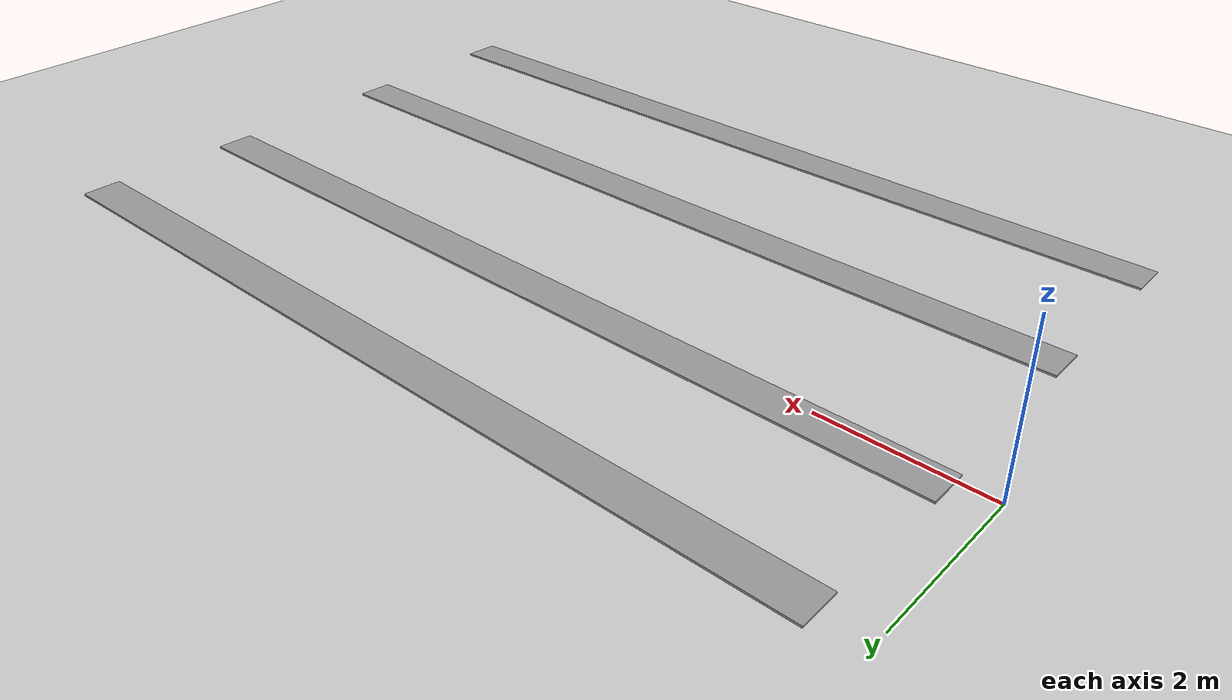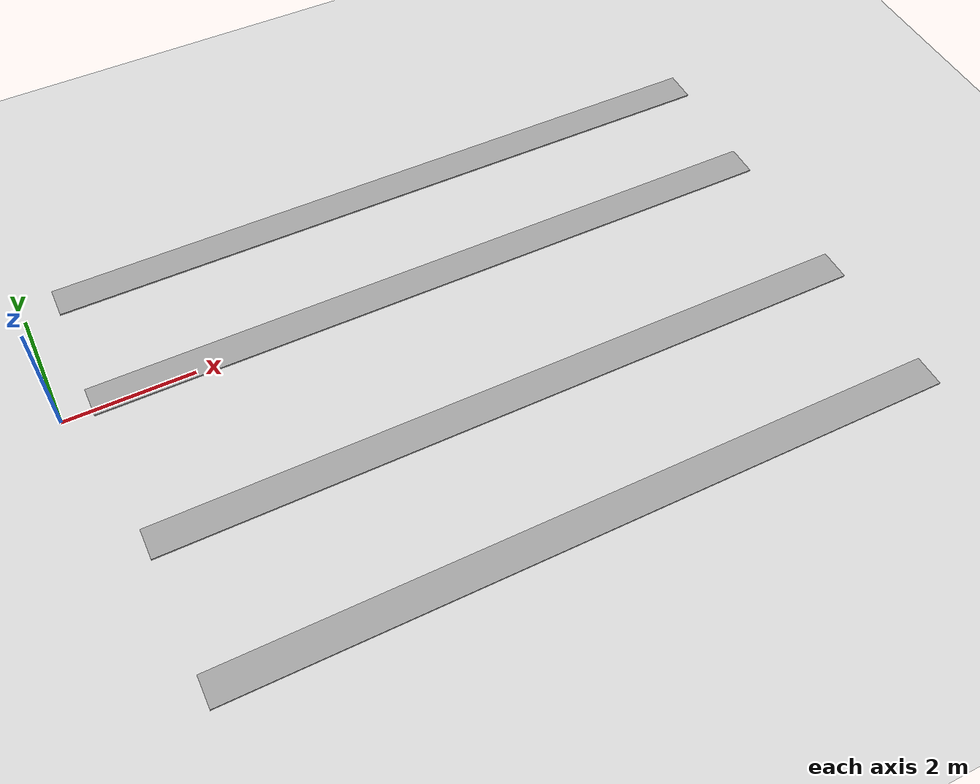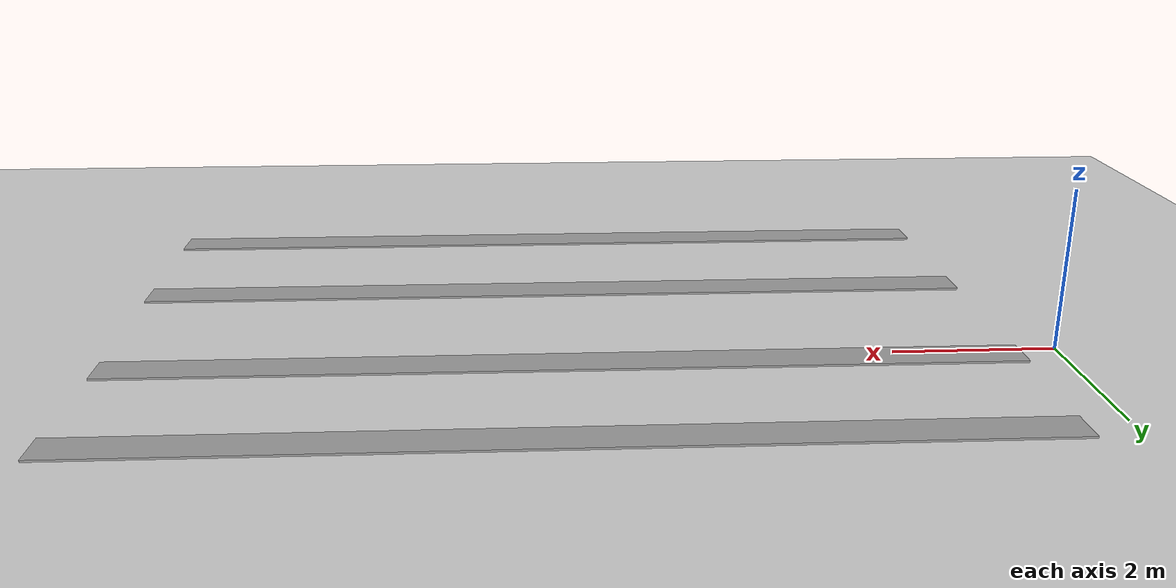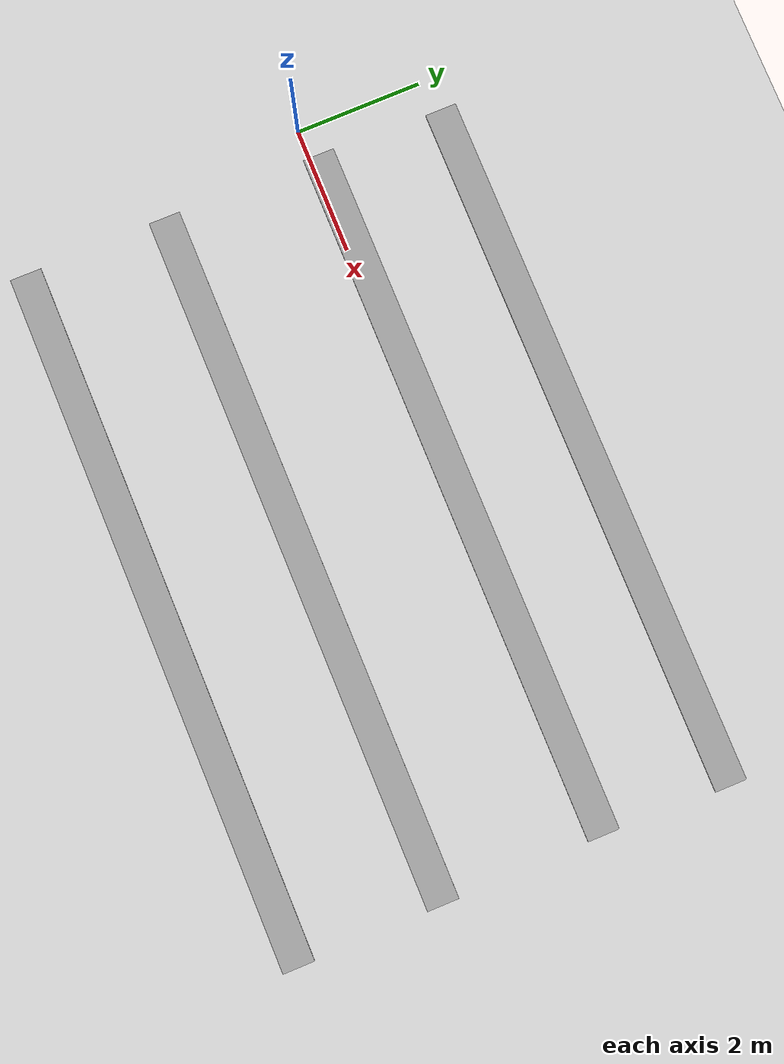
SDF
<sdf version="1.6">
 <world name="default">
  <light name="sun" type="directional">
   <pose>0 0 10 0 -0 0</pose>
   <diffuse>0.8 0.8 0.8 1</diffuse>
   <specular>0.2 0.2 0.2 1</specular>
   <attenuation>
    <range>1000</range>
    <constant>0.9</constant>
    <linear>0.01</linear>
    <quadratic>0.001</quadratic>
   </attenuation>
   <direction>-0.5 0.1 -0.9</direction>
  </light>
  <model name="ground_plane">
   <static>1</static>
   <link name="link">
    <collision name="collision">
     <geometry><plane><normal>0 0 1</normal><size>100 100</size></plane></geometry>
     <surface><friction><ode><mu>100</mu><mu2>50</mu2></ode></friction></surface>
    </collision>
    <visual name="visual">
     <cast_shadows>0</cast_shadows>
     <geometry><plane><normal>0 0 1</normal><size>100 100</size></plane></geometry>
     <material>
      <script><uri>file://media/materials/scripts/gazebo.material</uri><name>Gazebo/Grey</name></script>
     </material>
    </visual>
   </link>
  </model>
  <gravity>0 0 -9.8</gravity>
  <magnetic_field>6e-06 2.3e-05 -4.2e-05</magnetic_field>
  <atmosphere type="adiabatic"/>
  <physics name="default_physics" default="0" type="ode">
   <max_step_size>0.001</max_step_size>
   <real_time_factor>1</real_time_factor>
   <real_time_update_rate>1000</real_time_update_rate>
  </physics>
  <scene><ambient>0.4 0.4 0.4 1</ambient><background>0.7 0.7 0.7 1</background><shadows>1</shadows></scene>
  <spherical_coordinates>
   <surface_model>EARTH_WGS84</surface_model>
   <latitude_deg>0</latitude_deg>
   <longitude_deg>0</longitude_deg>
   <elevation>0</elevation>
   <heading_deg>0</heading_deg>
  </spherical_coordinates>
  <model name="unit_box_0_0">
   <link name="link">
    <pose>4.03611 1.74012 -0 0 -0 0</pose>
    <inertial>
     <mass>0.137918</mass>
     <inertia>
      <ixx>0.00283246</ixx>
      <ixy>0</ixy>
      <ixz>0</ixz>
      <iyy>1.39815</iyy>
      <iyz>0</iyz>
      <izz>1.40096</izz>
     </inertia>
    </inertial>
    <visual name="visual">
     <geometry><box><size>11.0295 0.495787 0.025162</size></box></geometry>
     <material>
      <script><name>Gazebo/Grey</name><uri>file://media/materials/scripts/gazebo.material</uri></script>
      <ambient>1 1 1 1</ambient>
      <diffuse>1 1 1 1</diffuse>
      <specular>1 1 1 1</specular>
      <emissive>1 1 1 1</emissive>
      <shader type="vertex"><normal_map>__default__</normal_map></shader>
     </material>
    </visual>
    <collision name="collision">
     <geometry><box><size>11.0295 0.495787 0.025162</size></box></geometry>
     <surface>
      <friction>
       <ode><mu>1</mu><mu2>1</mu2><fdir1>0 0 0</fdir1><slip1>0</slip1><slip2>0</slip2></ode>
       <torsional>
        <coefficient>1</coefficient>
        <patch_radius>0</patch_radius>
        <surface_radius>0</surface_radius>
        <use_patch_radius>1</use_patch_radius>
        <ode><slip>0</slip></ode>
       </torsional>
      </friction>
      <bounce><restitution_coefficient>0</restitution_coefficient><threshold>1e+06</threshold></bounce>
      <contact>
       <collide_without_contact>0</collide_without_contact>
       <collide_without_contact_bitmask>1</collide_without_contact_bitmask>
       <collide_bitmask>1</collide_bitmask>
       <ode>
        <soft_cfm>0</soft_cfm>
        <soft_erp>0.2</soft_erp>
        <kp>1e+13</kp>
        <kd>1</kd>
        <max_vel>0.01</max_vel>
        <min_depth>0</min_depth>
       </ode>
       <bullet>
        <split_impulse>1</split_impulse>
        <split_impulse_penetration_threshold>-0.01</split_impulse_penetration_threshold>
        <soft_cfm>0</soft_cfm>
        <soft_erp>0.2</soft_erp>
        <kp>1e+13</kp>
        <kd>1</kd>
       </bullet>
      </contact>
     </surface>
    </collision>
   </link>
   <static>0</static>
   <pose>1.98762 0.41102 0.012581 0 -0 0</pose>
  </model>
  <model name="unit_box_0_0_clone">
   <link name="link">
    <pose>4.03611 1.74012 -0 0 -0 0</pose>
    <inertial>
     <mass>0.137918</mass>
     <inertia>
      <ixx>0.00283246</ixx>
      <ixy>0</ixy>
      <ixz>0</ixz>
      <iyy>1.39815</iyy>
      <iyz>0</iyz>
      <izz>1.40096</izz>
     </inertia>
    </inertial>
    <visual name="visual">
     <geometry><box><size>11.0295 0.495787 0.025162</size></box></geometry>
     <material>
      <script><name>Gazebo/Grey</name><uri>file://media/materials/scripts/gazebo.material</uri></script>
      <ambient>1 1 1 1</ambient>
      <diffuse>1 1 1 1</diffuse>
      <specular>1 1 1 1</specular>
      <emissive>1 1 1 1</emissive>
      <shader type="vertex"><normal_map>__default__</normal_map></shader>
     </material>
    </visual>
    <collision name="collision">
     <geometry><box><size>11.0295 0.495787 0.025162</size></box></geometry>
     <surface>
      <friction>
       <ode><mu>1</mu><mu2>1</mu2><fdir1>0 0 0</fdir1><slip1>0</slip1><slip2>0</slip2></ode>
       <torsional>
        <coefficient>1</coefficient>
        <patch_radius>0</patch_radius>
        <surface_radius>0</surface_radius>
        <use_patch_radius>1</use_patch_radius>
        <ode><slip>0</slip></ode>
       </torsional>
      </friction>
      <bounce><restitution_coefficient>0</restitution_coefficient><threshold>1e+06</threshold></bounce>
      <contact>
       <collide_without_contact>0</collide_without_contact>
       <collide_without_contact_bitmask>1</collide_without_contact_bitmask>
       <collide_bitmask>1</collide_bitmask>
       <ode>
        <soft_cfm>0</soft_cfm>
        <soft_erp>0.2</soft_erp>
        <kp>1e+13</kp>
        <kd>1</kd>
        <max_vel>0.01</max_vel>
        <min_depth>0</min_depth>
       </ode>
       <bullet>
        <split_impulse>1</split_impulse>
        <split_impulse_penetration_threshold>-0.01</split_impulse_penetration_threshold>
        <soft_cfm>0</soft_cfm>
        <soft_erp>0.2</soft_erp>
        <kp>1e+13</kp>
        <kd>1</kd>
       </bullet>
      </contact>
     </surface>
    </collision>
   </link>
   <static>0</static>
   <pose>1.9351 -1.58729 0.012581 0 -0 0</pose>
  </model>
  <model name="unit_box_0_0_clone_clone">
   <link name="link">
    <pose>4.03611 1.74012 -0 0 -0 0</pose>
    <inertial>
     <mass>0.137918</mass>
     <inertia>
      <ixx>0.00283246</ixx>
      <ixy>0</ixy>
      <ixz>0</ixz>
      <iyy>1.39815</iyy>
      <iyz>0</iyz>
      <izz>1.40096</izz>
     </inertia>
    </inertial>
    <visual name="visual">
     <geometry><box><size>11.0295 0.495787 0.025162</size></box></geometry>
     <material>
      <script><name>Gazebo/Grey</name><uri>file://media/materials/scripts/gazebo.material</uri></script>
      <ambient>1 1 1 1</ambient>
      <diffuse>1 1 1 1</diffuse>
      <specular>1 1 1 1</specular>
      <emissive>1 1 1 1</emissive>
      <shader type="vertex"><normal_map>__default__</normal_map></shader>
     </material>
    </visual>
    <collision name="collision">
     <geometry><box><size>11.0295 0.495787 0.025162</size></box></geometry>
     <surface>
      <friction>
       <ode><mu>1</mu><mu2>1</mu2><fdir1>0 0 0</fdir1><slip1>0</slip1><slip2>0</slip2></ode>
       <torsional>
        <coefficient>1</coefficient>
        <patch_radius>0</patch_radius>
        <surface_radius>0</surface_radius>
        <use_patch_radius>1</use_patch_radius>
        <ode><slip>0</slip></ode>
       </torsional>
      </friction>
      <bounce><restitution_coefficient>0</restitution_coefficient><threshold>1e+06</threshold></bounce>
      <contact>
       <collide_without_contact>0</collide_without_contact>
       <collide_without_contact_bitmask>1</collide_without_contact_bitmask>
       <collide_bitmask>1</collide_bitmask>
       <ode>
        <soft_cfm>0</soft_cfm>
        <soft_erp>0.2</soft_erp>
        <kp>1e+13</kp>
        <kd>1</kd>
        <max_vel>0.01</max_vel>
        <min_depth>0</min_depth>
       </ode>
       <bullet>
        <split_impulse>1</split_impulse>
        <split_impulse_penetration_threshold>-0.01</split_impulse_penetration_threshold>
        <soft_cfm>0</soft_cfm>
        <soft_erp>0.2</soft_erp>
        <kp>1e+13</kp>
        <kd>1</kd>
       </bullet>
      </contact>
     </surface>
    </collision>
   </link>
   <static>0</static>
   <pose>1.96369 -4.12716 0.012581 0 -0 0</pose>
  </model>
  <model name="unit_box_0_0_clone_clone_0">
   <link name="link">
    <pose>4.03611 1.74012 -0 0 -0 0</pose>
    <inertial>
     <mass>0.137918</mass>
     <inertia>
      <ixx>0.00283246</ixx>
      <ixy>0</ixy>
      <ixz>0</ixz>
      <iyy>1.39815</iyy>
      <iyz>0</iyz>
      <izz>1.40096</izz>
     </inertia>
    </inertial>
    <visual name="visual">
     <geometry><box><size>11.0295 0.495787 0.025162</size></box></geometry>
     <material>
      <script><name>Gazebo/Grey</name><uri>file://media/materials/scripts/gazebo.material</uri></script>
      <ambient>1 1 1 1</ambient>
      <diffuse>1 1 1 1</diffuse>
      <specular>1 1 1 1</specular>
      <emissive>1 1 1 1</emissive>
      <shader type="vertex"><normal_map>__default__</normal_map></shader>
     </material>
    </visual>
    <collision name="collision">
     <geometry><box><size>11.0295 0.495787 0.025162</size></box></geometry>
     <surface>
      <friction>
       <ode><mu>1</mu><mu2>1</mu2><fdir1>0 0 0</fdir1><slip1>0</slip1><slip2>0</slip2></ode>
       <torsional>
        <coefficient>1</coefficient>
        <patch_radius>0</patch_radius>
        <surface_radius>0</surface_radius>
        <use_patch_radius>1</use_patch_radius>
        <ode><slip>0</slip></ode>
       </torsional>
      </friction>
      <bounce><restitution_coefficient>0</restitution_coefficient><threshold>1e+06</threshold></bounce>
      <contact>
       <collide_without_contact>0</collide_without_contact>
       <collide_without_contact_bitmask>1</collide_without_contact_bitmask>
       <collide_bitmask>1</collide_bitmask>
       <ode>
        <soft_cfm>0</soft_cfm>
        <soft_erp>0.2</soft_erp>
        <kp>1e+13</kp>
        <kd>1</kd>
        <max_vel>0.01</max_vel>
        <min_depth>0</min_depth>
       </ode>
       <bullet>
        <split_impulse>1</split_impulse>
        <split_impulse_penetration_threshold>-0.01</split_impulse_penetration_threshold>
        <soft_cfm>0</soft_cfm>
        <soft_erp>0.2</soft_erp>
        <kp>1e+13</kp>
        <kd>1</kd>
       </bullet>
      </contact>
     </surface>
    </collision>
   </link>
   <static>0</static>
   <pose>1.98588 -6.39054 0.012581 0 -0 0</pose>
  </model>
 </world>
</sdf>
